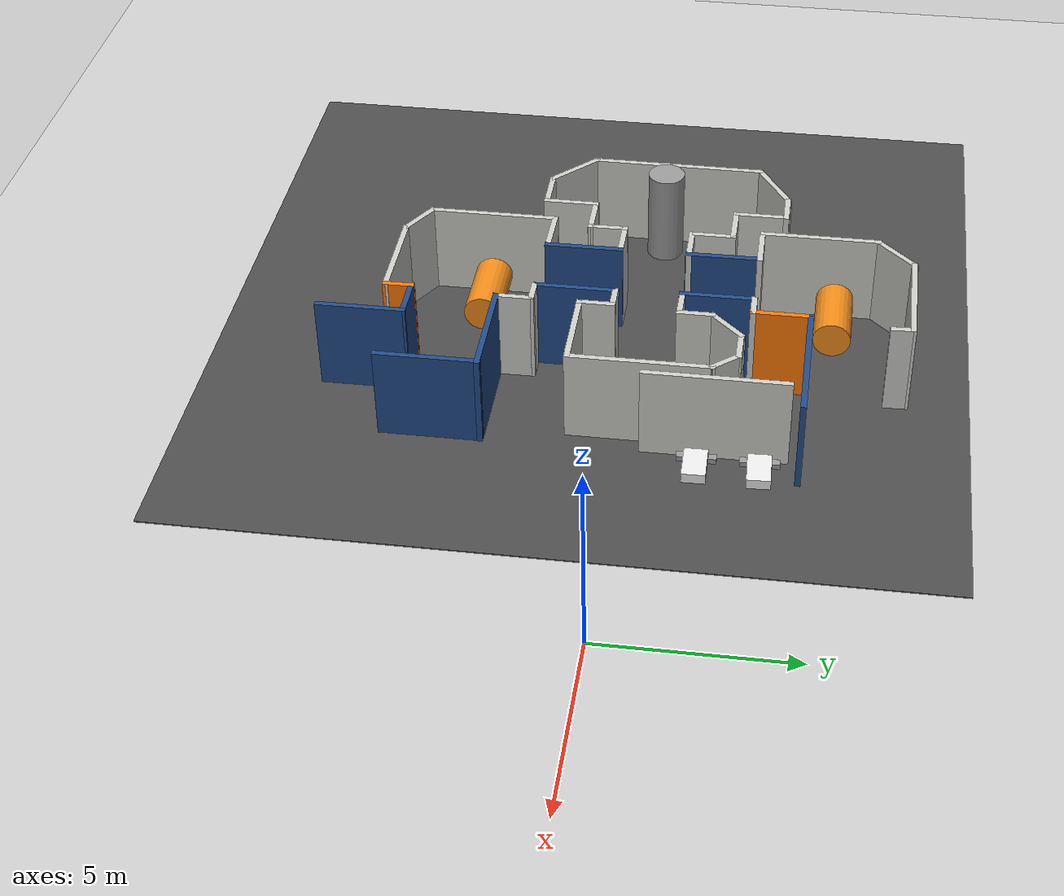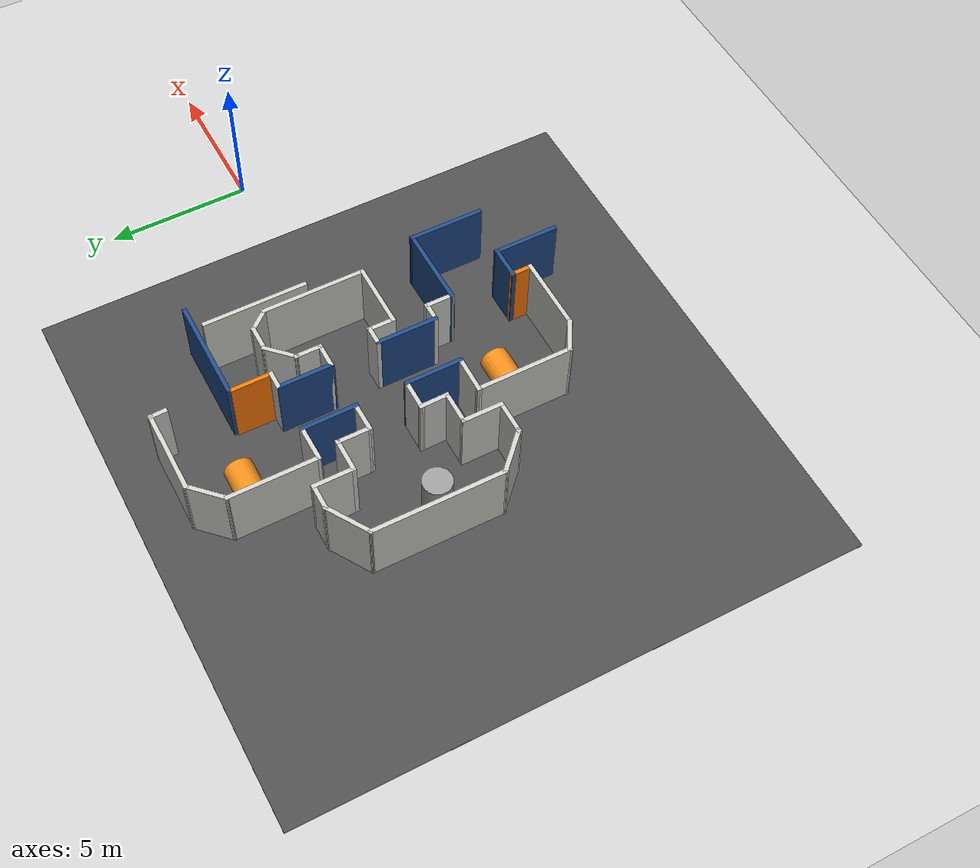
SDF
<sdf version="1.7">
 <world name="default">
  <model name="ground_plane">
   <static>1</static>
   <link name="link">
    <collision name="collision">
     <geometry><plane><normal>0 0 1</normal><size>100 100</size></plane></geometry>
     <surface><friction><ode><mu>100</mu><mu2>50</mu2></ode></friction></surface>
    </collision>
    <visual name="visual">
     <cast_shadows>0</cast_shadows>
     <geometry><plane><normal>0 0 1</normal><size>100 100</size></plane></geometry>
     <material>
      <script><uri>file://media/materials/scripts/gazebo.material</uri><name>Gazebo/Grey</name></script>
     </material>
    </visual>
   </link>
  </model>
  <model name="among_us_world">
   <pose>0.133216 -0.12311 0 0 -0 0</pose>
   <link name="Wall_101">
    <collision name="Wall_101_Collision">
     <geometry><box><size>3.75 0.15 2.5</size></box></geometry>
     <pose>0 0 1.25 0 -0 0</pose>
    </collision>
    <visual name="Wall_101_Visual">
     <pose>0 0 1.25 0 -0 0</pose>
     <geometry><box><size>3.75 0.15 2.5</size></box></geometry>
     <material>
      <script><uri>file://media/materials/scripts/gazebo.material</uri><name>Gazebo/CeilingTiled</name></script>
      <ambient>0.12549 0.290196 0.529412 1</ambient>
     </material>
     <meta><layer>0</layer></meta>
    </visual>
    <pose>-6.98451 2.43054 0 0 -0 -1.5708</pose>
   </link>
   <link name="Wall_161">
    <collision name="Wall_161_Collision">
     <geometry><box><size>2.70224 0.15 2.5</size></box></geometry>
     <pose>0 0 1.25 0 -0 0</pose>
    </collision>
    <visual name="Wall_161_Visual">
     <pose>0 0 1.25 0 -0 0</pose>
     <geometry><box><size>2.70224 0.15 2.5</size></box></geometry>
     <material>
      <script><uri>file://media/materials/scripts/gazebo.material</uri><name>Gazebo/Motorway</name></script>
      <ambient>0.12549 0.290196 0.529412 1</ambient>
     </material>
     <meta><layer>0</layer></meta>
    </visual>
    <pose>-6.87644 -4.72879 0 0 -0 1.5708</pose>
   </link>
   <link name="Wall_162">
    <collision name="Wall_162_Collision">
     <geometry><box><size>2.95229 0.15 2.5</size></box></geometry>
     <pose>0 0 1.25 0 -0 0</pose>
    </collision>
    <visual name="Wall_162_Visual">
     <pose>0 0 1.25 0 -0 0</pose>
     <geometry><box><size>2.95229 0.15 2.5</size></box></geometry>
     <material>
      <script><uri>file://media/materials/scripts/gazebo.material</uri><name>Gazebo/Motorway</name></script>
      <ambient>0.12549 0.290196 0.529412 1</ambient>
     </material>
     <meta><layer>0</layer></meta>
    </visual>
    <pose>-8.262 -3.46044 0 0 -0 -3.13604</pose>
   </link>
   <link name="Wall_163">
    <collision name="Wall_163_Collision">
     <geometry><box><size>1.04776 0.15 2.5</size></box></geometry>
     <pose>0 0 1.25 0 -0 0</pose>
    </collision>
    <visual name="Wall_163_Visual">
     <pose>0 0 1.25 0 -0 0</pose>
     <geometry><box><size>1.04776 0.15 2.5</size></box></geometry>
     <material>
      <script><uri>file://media/materials/scripts/gazebo.material</uri><name>Gazebo/CeilingTiled</name></script>
      <ambient>0.996078 0.47451 0.0196078 1</ambient>
     </material>
     <meta><layer>0</layer></meta>
    </visual>
    <pose>-9.66312 -3.00378 0 0 -0 1.5708</pose>
   </link>
   <link name="Wall_164">
    <collision name="Wall_164_Collision">
     <geometry><box><size>0.75 0.15 2.5</size></box></geometry>
     <pose>0 0 1.25 0 -0 0</pose>
    </collision>
    <visual name="Wall_164_Visual">
     <pose>0 0 1.25 0 -0 0</pose>
     <geometry><box><size>0.75 0.15 2.5</size></box></geometry>
     <material>
      <script><uri>file://media/materials/scripts/gazebo.material</uri><name>Gazebo/CeilingTiled</name></script>
      <ambient>0.996078 0.47451 0.0196078 1</ambient>
     </material>
     <meta><layer>0</layer></meta>
    </visual>
    <pose>-9.96312 -2.55491 0 0 -0 3.14159</pose>
   </link>
   <link name="Wall_165">
    <collision name="Wall_165_Collision">
     <geometry><box><size>2.25 0.15 2.5</size></box></geometry>
     <pose>0 0 1.25 0 -0 0</pose>
    </collision>
    <visual name="Wall_165_Visual">
     <pose>0 0 1.25 0 -0 0</pose>
     <geometry><box><size>2.25 0.15 2.5</size></box></geometry>
     <material>
      <script><uri>file://media/materials/scripts/gazebo.material</uri><name>Gazebo/Motorway</name></script>
      <ambient>0.12549 0.290196 0.529412 1</ambient>
     </material>
     <meta><layer>0</layer></meta>
    </visual>
    <pose>-10.2631 -1.50491 0 0 -0 1.5708</pose>
   </link>
   <link name="Wall_166">
    <collision name="Wall_166_Collision">
     <geometry><box><size>0.75 0.15 2.5</size></box></geometry>
     <pose>0 0 1.25 0 -0 0</pose>
    </collision>
    <visual name="Wall_166_Visual">
     <pose>0 0 1.25 0 -0 0</pose>
     <geometry><box><size>0.75 0.15 2.5</size></box></geometry>
     <material>
      <script><uri>file://media/materials/scripts/gazebo.material</uri><name>Gazebo/CeilingTiled</name></script>
      <ambient>0.435294 0.796078 0.67451 1</ambient>
     </material>
     <meta><layer>0</layer></meta>
    </visual>
    <pose>-9.96312 -0.454906 0 0 -0 0</pose>
   </link>
   <link name="Wall_167">
    <collision name="Wall_167_Collision">
     <geometry><box><size>1 0.15 2.5</size></box></geometry>
     <pose>0 0 1.25 0 -0 0</pose>
    </collision>
    <visual name="Wall_167_Visual">
     <pose>0 0 1.25 0 -0 0</pose>
     <geometry><box><size>1 0.15 2.5</size></box></geometry>
     <material>
      <script><uri>file://media/materials/scripts/gazebo.material</uri><name>Gazebo/CeilingTiled</name></script>
      <ambient>0.435294 0.796078 0.67451 1</ambient>
     </material>
     <meta><layer>0</layer></meta>
    </visual>
    <pose>-9.66312 -0.879906 0 0 -0 -1.5708</pose>
   </link>
   <link name="Wall_168">
    <collision name="Wall_168_Collision">
     <geometry><box><size>2.40666 0.15 2.5</size></box></geometry>
     <pose>0 0 1.25 0 -0 0</pose>
    </collision>
    <visual name="Wall_168_Visual">
     <pose>0 0 1.25 0 -0 0</pose>
     <geometry><box><size>2.40666 0.15 2.5</size></box></geometry>
     <material>
      <script><uri>file://media/materials/scripts/gazebo.material</uri><name>Gazebo/CeilingTiled</name></script>
      <ambient>0.435294 0.796078 0.67451 1</ambient>
     </material>
     <meta><layer>0</layer></meta>
    </visual>
    <pose>-8.53479 -1.30491 0 0 -0 0</pose>
   </link>
   <link name="Wall_169">
    <collision name="Wall_169_Collision">
     <geometry><box><size>3.75 0.15 2.5</size></box></geometry>
     <pose>0 0 1.25 0 -0 0</pose>
    </collision>
    <visual name="Wall_169_Visual">
     <pose>0 0 1.25 0 -0 0</pose>
     <geometry><box><size>3.75 0.15 2.5</size></box></geometry>
     <material>
      <script><uri>file://media/materials/scripts/gazebo.material</uri><name>Gazebo/CeilingTiled</name></script>
      <ambient>0.435294 0.796078 0.67451 1</ambient>
     </material>
     <meta><layer>0</layer></meta>
    </visual>
    <pose>-7.39091 0.495094 0 0 -0 1.5708</pose>
   </link>
   <link name="Wall_170">
    <collision name="Wall_170_Collision">
     <geometry><box><size>0.93677 0.15 2.5</size></box></geometry>
     <pose>0 0 1.25 0 -0 0</pose>
    </collision>
    <visual name="Wall_170_Visual">
     <pose>0 0 1.25 0 -0 0</pose>
     <geometry><box><size>0.93677 0.15 2.5</size></box></geometry>
     <material>
      <script><uri>file://media/materials/scripts/gazebo.material</uri><name>Gazebo/CeilingTiled</name></script>
      <ambient>0.435294 0.796078 0.67451 1</ambient>
     </material>
     <meta><layer>0</layer></meta>
    </visual>
    <pose>-7.66031 2.59561 0 0 -0 2.2722</pose>
   </link>
   <link name="Wall_171">
    <collision name="Wall_171_Collision">
     <geometry><box><size>1 0.15 2.5</size></box></geometry>
     <pose>0 0 1.25 0 -0 0</pose>
    </collision>
    <visual name="Wall_171_Visual">
     <pose>0 0 1.25 0 -0 0</pose>
     <geometry><box><size>1 0.15 2.5</size></box></geometry>
     <material>
      <script><uri>file://media/materials/scripts/gazebo.material</uri><name>Gazebo/CeilingTiled</name></script>
      <ambient>0.435294 0.796078 0.67451 1</ambient>
     </material>
     <meta><layer>0</layer></meta>
    </visual>
    <pose>-8.33916 2.89614 0 0 -0 3.14159</pose>
   </link>
   <link name="Wall_172">
    <collision name="Wall_172_Collision">
     <geometry><box><size>1.25 0.15 2.5</size></box></geometry>
     <pose>0 0 1.25 0 -0 0</pose>
    </collision>
    <visual name="Wall_172_Visual">
     <pose>0 0 1.25 0 -0 0</pose>
     <geometry><box><size>1.25 0.15 2.5</size></box></geometry>
     <material>
      <script><uri>file://media/materials/scripts/gazebo.material</uri><name>Gazebo/CeilingTiled</name></script>
      <ambient>0.435294 0.796078 0.67451 1</ambient>
     </material>
     <meta><layer>0</layer></meta>
    </visual>
    <pose>-9.15307 2.50723 0 0 -0 -2.35619</pose>
   </link>
   <link name="Wall_173">
    <collision name="Wall_173_Collision">
     <geometry><box><size>1 0.15 2.5</size></box></geometry>
     <pose>0 0 1.25 0 -0 0</pose>
    </collision>
    <visual name="Wall_173_Visual">
     <pose>0 0 1.25 0 -0 0</pose>
     <geometry><box><size>1 0.15 2.5</size></box></geometry>
     <material>
      <script><uri>file://media/materials/scripts/gazebo.material</uri><name>Gazebo/CeilingTiled</name></script>
      <ambient>0.435294 0.796078 0.67451 1</ambient>
     </material>
     <meta><layer>0</layer></meta>
    </visual>
    <pose>-9.54198 1.69332 0 0 -0 -1.5708</pose>
   </link>
   <link name="Wall_174">
    <collision name="Wall_174_Collision">
     <geometry><box><size>0.969112 0.15 2.5</size></box></geometry>
     <pose>0 0 1.25 0 -0 0</pose>
    </collision>
    <visual name="Wall_174_Visual">
     <pose>0 0 1.25 0 -0 0</pose>
     <geometry><box><size>0.969112 0.15 2.5</size></box></geometry>
     <material>
      <script><uri>file://media/materials/scripts/gazebo.material</uri><name>Gazebo/CeilingTiled</name></script>
      <ambient>0.435294 0.796078 0.67451 1</ambient>
     </material>
     <meta><layer>0</layer></meta>
    </visual>
    <pose>-9.95154 1.26832 0 0 -0 -3.14159</pose>
   </link>
   <link name="Wall_175">
    <collision name="Wall_175_Collision">
     <geometry><box><size>2 0.15 2.5</size></box></geometry>
     <pose>0 0 1.25 0 -0 0</pose>
    </collision>
    <visual name="Wall_175_Visual">
     <pose>0 0 1.25 0 -0 0</pose>
     <geometry><box><size>2 0.15 2.5</size></box></geometry>
     <material>
      <script><uri>file://media/materials/scripts/gazebo.material</uri><name>Gazebo/Motorway</name></script>
      <ambient>0.12549 0.290196 0.529412 1</ambient>
     </material>
     <meta><layer>0</layer></meta>
    </visual>
    <pose>-10.3611 2.17994 0 0 -0 1.5708</pose>
   </link>
   <link name="Wall_176">
    <collision name="Wall_176_Collision">
     <geometry><box><size>0.719112 0.15 2.5</size></box></geometry>
     <pose>0 0 1.25 0 -0 0</pose>
    </collision>
    <visual name="Wall_176_Visual">
     <pose>0 0 1.25 0 -0 0</pose>
     <geometry><box><size>0.719112 0.15 2.5</size></box></geometry>
     <material>
      <script><uri>file://media/materials/scripts/gazebo.material</uri><name>Gazebo/CeilingTiled</name></script>
      <ambient>0.996078 0.47451 0.0196078 1</ambient>
     </material>
     <meta><layer>0</layer></meta>
    </visual>
    <pose>-10.0765 3.11832 0 0 -0 0</pose>
   </link>
   <link name="Wall_177">
    <collision name="Wall_177_Collision">
     <geometry><box><size>1.5 0.15 2.5</size></box></geometry>
     <pose>0 0 1.25 0 -0 0</pose>
    </collision>
    <visual name="Wall_177_Visual">
     <pose>0 0 1.25 0 -0 0</pose>
     <geometry><box><size>1.5 0.15 2.5</size></box></geometry>
     <material>
      <script><uri>file://media/materials/scripts/gazebo.material</uri><name>Gazebo/Grey</name></script>
      <ambient>0.996078 0.47451 0.0196078 1</ambient>
     </material>
     <meta><layer>0</layer></meta>
    </visual>
    <pose>-9.79198 3.79332 0 0 -0 1.5708</pose>
   </link>
   <link name="Wall_208">
    <collision name="Wall_208_Collision">
     <geometry><box><size>1.25 0.15 2.5</size></box></geometry>
     <pose>0 0 1.25 0 -0 0</pose>
    </collision>
    <visual name="Wall_208_Visual">
     <pose>0 0 1.25 0 -0 0</pose>
     <geometry><box><size>1.25 0.15 2.5</size></box></geometry>
     <material>
      <script><uri>file://media/materials/scripts/gazebo.material</uri><name>Gazebo/CeilingTiled</name></script>
      <ambient>0.458824 0.313726 0.482353 1</ambient>
     </material>
     <meta><layer>0</layer></meta>
    </visual>
    <pose>-13.1077 1.80265 0 0 -0 -1.57068</pose>
   </link>
   <link name="Wall_209">
    <collision name="Wall_209_Collision">
     <geometry><box><size>1.11978 0.15 2.5</size></box></geometry>
     <pose>0 0 1.25 0 -0 0</pose>
    </collision>
    <visual name="Wall_209_Visual">
     <pose>0 0 1.25 0 -0 0</pose>
     <geometry><box><size>1.11978 0.15 2.5</size></box></geometry>
     <material>
      <script><uri>file://media/materials/scripts/gazebo.material</uri><name>Gazebo/CeilingTiled</name></script>
      <ambient>0.458824 0.313726 0.482353 1</ambient>
     </material>
     <meta><layer>0</layer></meta>
    </visual>
    <pose>-12.6228 1.25736 0 0 -0 0.009865</pose>
   </link>
   <link name="Wall_32">
    <collision name="Wall_32_Collision">
     <geometry><box><size>0.656345 0.15 2.5</size></box></geometry>
     <pose>0 0 1.25 0 -0 0</pose>
    </collision>
    <visual name="Wall_32_Visual">
     <pose>0 0 1.25 0 -0 0</pose>
     <geometry><box><size>0.656345 0.15 2.5</size></box></geometry>
     <material>
      <script><uri>file://media/materials/scripts/gazebo.material</uri><name>Gazebo/CeilingTiled</name></script>
      <ambient>0.996078 0.47451 0.0196078 1</ambient>
     </material>
     <meta><layer>0</layer></meta>
    </visual>
    <pose>-9.54527 6.90412 0 0 -0 1.60153</pose>
   </link>
   <link name="Wall_33">
    <collision name="Wall_33_Collision">
     <geometry><box><size>3 0.15 2.5</size></box></geometry>
     <pose>0 0 1.25 0 -0 0</pose>
    </collision>
    <visual name="Wall_33_Visual">
     <pose>0 0 1.25 0 -0 0</pose>
     <geometry><box><size>3 0.15 2.5</size></box></geometry>
     <material>
      <script><uri>file://media/materials/scripts/gazebo.material</uri><name>Gazebo/CeilingTiled</name></script>
      <ambient>0.996078 0.47451 0.0196078 1</ambient>
     </material>
     <meta><layer>0</layer></meta>
    </visual>
    <pose>-10.978 7.15717 0 0 -0 3.14159</pose>
   </link>
   <link name="Wall_34">
    <collision name="Wall_34_Collision">
     <geometry><box><size>1.5 0.15 2.5</size></box></geometry>
     <pose>0 0 1.25 0 -0 0</pose>
    </collision>
    <visual name="Wall_34_Visual">
     <pose>0 0 1.25 0 -0 0</pose>
     <geometry><box><size>1.5 0.15 2.5</size></box></geometry>
     <material>
      <script><uri>file://media/materials/scripts/gazebo.material</uri><name>Gazebo/CeilingTiled</name></script>
      <ambient>0.996078 0.47451 0.0196078 1</ambient>
     </material>
     <meta><layer>0</layer></meta>
    </visual>
    <pose>-12.8803 6.67987 0 0 -0 -2.35619</pose>
   </link>
   <link name="Wall_35">
    <collision name="Wall_35_Collision">
     <geometry><box><size>3.21889 0.15 2.5</size></box></geometry>
     <pose>0 0 1.25 0 -0 0</pose>
    </collision>
    <visual name="Wall_35_Visual">
     <pose>0 0 1.25 0 -0 0</pose>
     <geometry><box><size>3.21889 0.15 2.5</size></box></geometry>
     <material>
      <script><uri>file://media/materials/scripts/gazebo.material</uri><name>Gazebo/CeilingTiled</name></script>
      <ambient>0.996078 0.47451 0.0196078 1</ambient>
     </material>
     <meta><layer>0</layer></meta>
    </visual>
    <pose>-13.3576 4.66813 0 0 -0 -1.5708</pose>
   </link>
   <link name="Wall_36">
    <collision name="Wall_36_Collision">
     <geometry><box><size>1.35468 0.15 2.5</size></box></geometry>
     <pose>0 0 1.25 0 -0 0</pose>
    </collision>
    <visual name="Wall_36_Visual">
     <pose>0 0 1.25 0 -0 0</pose>
     <geometry><box><size>1.35468 0.15 2.5</size></box></geometry>
     <material>
      <script><uri>file://media/materials/scripts/gazebo.material</uri><name>Gazebo/CeilingTiled</name></script>
      <ambient>0.996078 0.47451 0.0196078 1</ambient>
     </material>
     <meta><layer>0</layer></meta>
    </visual>
    <pose>-12.7556 3.12401 0 0 -0 0.009756</pose>
   </link>
   <link name="Wall_37">
    <collision name="Wall_37_Collision">
     <geometry><box><size>2.0178 0.15 2.5</size></box></geometry>
     <pose>0 0 1.25 0 -0 0</pose>
    </collision>
    <visual name="Wall_37_Visual">
     <pose>0 0 1.25 0 -0 0</pose>
     <geometry><box><size>2.0178 0.15 2.5</size></box></geometry>
     <material>
      <script><uri>file://media/materials/scripts/gazebo.material</uri><name>Gazebo/Motorway</name></script>
      <ambient>0.12549 0.290196 0.529412 1</ambient>
     </material>
     <meta><layer>0</layer></meta>
    </visual>
    <pose>-12.1457 2.18046 0 0 -0 -1.56247</pose>
   </link>
   <link name="Wall_40">
    <collision name="Wall_40_Collision">
     <geometry><box><size>1.25 0.15 2.5</size></box></geometry>
     <pose>0 0 1.25 0 -0 0</pose>
    </collision>
    <visual name="Wall_40_Visual">
     <pose>0 0 1.25 0 -0 0</pose>
     <geometry><box><size>1.25 0.15 2.5</size></box></geometry>
     <material>
      <script><uri>file://media/materials/scripts/gazebo.material</uri><name>Gazebo/CeilingTiled</name></script>
      <ambient>0.458824 0.313726 0.482353 1</ambient>
     </material>
     <meta><layer>0</layer></meta>
    </visual>
    <pose>-13.6578 2.35272 0 0 -0 3.14159</pose>
   </link>
   <link name="Wall_43">
    <collision name="Wall_43_Collision">
     <geometry><box><size>1.5 0.15 2.5</size></box></geometry>
     <pose>0 0 1.25 0 -0 0</pose>
    </collision>
    <visual name="Wall_43_Visual">
     <pose>0 0 1.25 0 -0 0</pose>
     <geometry><box><size>1.5 0.15 2.5</size></box></geometry>
     <material>
      <script><uri>file://media/materials/scripts/gazebo.material</uri><name>Gazebo/CeilingTiled</name></script>
      <ambient>0.458824 0.313726 0.482353 1</ambient>
     </material>
     <meta><layer>0</layer></meta>
    </visual>
    <pose>-14.2078 3.02772 0 0 -0 1.5708</pose>
   </link>
   <link name="Wall_44">
    <collision name="Wall_44_Collision">
     <geometry><box><size>1 0.15 2.5</size></box></geometry>
     <pose>0 0 1.25 0 -0 0</pose>
    </collision>
    <visual name="Wall_44_Visual">
     <pose>0 0 1.25 0 -0 0</pose>
     <geometry><box><size>1 0.15 2.5</size></box></geometry>
     <material>
      <script><uri>file://media/materials/scripts/gazebo.material</uri><name>Gazebo/CeilingTiled</name></script>
      <ambient>0.458824 0.313726 0.482353 1</ambient>
     </material>
     <meta><layer>0</layer></meta>
    </visual>
    <pose>-14.6328 3.70272 0 0 -0 3.14159</pose>
   </link>
   <link name="Wall_45">
    <collision name="Wall_45_Collision">
     <geometry><box><size>1.76072 0.15 2.5</size></box></geometry>
     <pose>0 0 1.25 0 -0 0</pose>
    </collision>
    <visual name="Wall_45_Visual">
     <pose>0 0 1.25 0 -0 0</pose>
     <geometry><box><size>1.76072 0.15 2.5</size></box></geometry>
     <material>
      <script><uri>file://media/materials/scripts/gazebo.material</uri><name>Gazebo/CeilingTiled</name></script>
      <ambient>0.360784 0.207843 0.4 1</ambient>
     </material>
     <meta><layer>0</layer></meta>
    </visual>
    <pose>-15.7428 3.27922 0 0 -0 -2.58786</pose>
   </link>
   <link name="Wall_46">
    <collision name="Wall_46_Collision">
     <geometry><box><size>4.75003 0.15 2.5</size></box></geometry>
     <pose>0 0 1.25 0 -0 0</pose>
    </collision>
    <visual name="Wall_46_Visual">
     <pose>0 0 1.25 0 -0 0</pose>
     <geometry><box><size>4.75003 0.15 2.5</size></box></geometry>
     <material>
      <script><uri>file://media/materials/scripts/gazebo.material</uri><name>Gazebo/CeilingTiled</name></script>
      <ambient>0.360784 0.207843 0.4 1</ambient>
     </material>
     <meta><layer>0</layer></meta>
    </visual>
    <pose>-16.4358 0.555717 0 0 -0 -1.57428</pose>
   </link>
   <link name="Wall_47">
    <collision name="Wall_47_Collision">
     <geometry><box><size>1.7065 0.15 2.5</size></box></geometry>
     <pose>0 0 1.25 0 -0 0</pose>
    </collision>
    <visual name="Wall_47_Visual">
     <pose>0 0 1.25 0 -0 0</pose>
     <geometry><box><size>1.7065 0.15 2.5</size></box></geometry>
     <material>
      <script><uri>file://media/materials/scripts/gazebo.material</uri><name>Gazebo/CeilingTiled</name></script>
      <ambient>0.360784 0.207843 0.4 1</ambient>
     </material>
     <meta><layer>0</layer></meta>
    </visual>
    <pose>-15.8858 -2.28678 0 0 -0 -0.771315</pose>
   </link>
   <link name="Wall_48">
    <collision name="Wall_48_Collision">
     <geometry><box><size>1.266 0.15 2.5</size></box></geometry>
     <pose>0 0 1.25 0 -0 0</pose>
    </collision>
    <visual name="Wall_48_Visual">
     <pose>0 0 1.25 0 -0 0</pose>
     <geometry><box><size>1.266 0.15 2.5</size></box></geometry>
     <material>
      <script><uri>file://media/materials/scripts/gazebo.material</uri><name>Gazebo/CeilingTiled</name></script>
      <ambient>0.678431 0.498039 0.658824 1</ambient>
     </material>
     <meta><layer>0</layer></meta>
    </visual>
    <pose>-14.7698 -2.82928 0 0 -0 0</pose>
   </link>
   <link name="Wall_49">
    <collision name="Wall_49_Collision">
     <geometry><box><size>1.5 0.15 2.5</size></box></geometry>
     <pose>0 0 1.25 0 -0 0</pose>
    </collision>
    <visual name="Wall_49_Visual">
     <pose>0 0 1.25 0 -0 0</pose>
     <geometry><box><size>1.5 0.15 2.5</size></box></geometry>
     <material>
      <script><uri>file://media/materials/scripts/gazebo.material</uri><name>Gazebo/CeilingTiled</name></script>
      <ambient>0.458824 0.313726 0.482353 1</ambient>
     </material>
     <meta><layer>0</layer></meta>
    </visual>
    <pose>-14.2118 -2.15428 0 0 -0 1.5708</pose>
   </link>
   <link name="Wall_50">
    <collision name="Wall_50_Collision">
     <geometry><box><size>1.25 0.15 2.5</size></box></geometry>
     <pose>0 0 1.25 0 -0 0</pose>
    </collision>
    <visual name="Wall_50_Visual">
     <pose>0 0 1.25 0 -0 0</pose>
     <geometry><box><size>1.25 0.15 2.5</size></box></geometry>
     <material>
      <script><uri>file://media/materials/scripts/gazebo.material</uri><name>Gazebo/CeilingTiled</name></script>
      <ambient>0.458824 0.313726 0.482353 1</ambient>
     </material>
     <meta><layer>0</layer></meta>
    </visual>
    <pose>-13.6618 -1.47928 0 0 -0 0</pose>
   </link>
   <link name="Wall_51">
    <collision name="Wall_51_Collision">
     <geometry><box><size>1.07621 0.15 2.5</size></box></geometry>
     <pose>0 0 1.25 0 -0 0</pose>
    </collision>
    <visual name="Wall_51_Visual">
     <pose>0 0 1.25 0 -0 0</pose>
     <geometry><box><size>1.07621 0.15 2.5</size></box></geometry>
     <material>
      <script><uri>file://media/materials/scripts/gazebo.material</uri><name>Gazebo/CeilingTiled</name></script>
      <ambient>0.458824 0.313726 0.482353 1</ambient>
     </material>
     <meta><layer>0</layer></meta>
    </visual>
    <pose>-13.1188 -1.01578 0 0 -0 1.5859</pose>
   </link>
   <link name="Wall_52">
    <collision name="Wall_52_Collision">
     <geometry><box><size>1.1411 0.15 2.5</size></box></geometry>
     <pose>0 0 1.25 0 -0 0</pose>
    </collision>
    <visual name="Wall_52_Visual">
     <pose>0 0 1.25 0 -0 0</pose>
     <geometry><box><size>1.1411 0.15 2.5</size></box></geometry>
     <material>
      <script><uri>file://media/materials/scripts/gazebo.material</uri><name>Gazebo/CeilingTiled</name></script>
      <ambient>0.458824 0.313726 0.482353 1</ambient>
     </material>
     <meta><layer>0</layer></meta>
    </visual>
    <pose>-12.6302 -0.553561 0 0 -0 -0.00258</pose>
   </link>
   <link name="Wall_53">
    <collision name="Wall_53_Collision">
     <geometry><box><size>2.08956 0.15 2.5</size></box></geometry>
     <pose>0 0 1.25 0 -0 0</pose>
    </collision>
    <visual name="Wall_53_Visual">
     <pose>0 0 1.25 0 -0 0</pose>
     <geometry><box><size>2.08956 0.15 2.5</size></box></geometry>
     <material>
      <script><uri>file://media/materials/scripts/gazebo.material</uri><name>Gazebo/Motorway</name></script>
      <ambient>0.12549 0.290196 0.529412 1</ambient>
     </material>
     <meta><layer>0</layer></meta>
    </visual>
    <pose>-12.1122 -1.5246 0 0 -0 -1.56365</pose>
   </link>
   <link name="Wall_54">
    <collision name="Wall_54_Collision">
     <geometry><box><size>1.3912 0.15 2.5</size></box></geometry>
     <pose>0 0 1.25 0 -0 0</pose>
    </collision>
    <visual name="Wall_54_Visual">
     <pose>0 0 1.25 0 -0 0</pose>
     <geometry><box><size>1.3912 0.15 2.5</size></box></geometry>
     <material>
      <script><uri>file://media/materials/scripts/gazebo.material</uri><name>Gazebo/CeilingTiled</name></script>
      <ambient>0.996078 0.47451 0.0196078 1</ambient>
     </material>
     <meta><layer>0</layer></meta>
    </visual>
    <pose>-12.7414 -2.48657 0 0 -0 3.12906</pose>
   </link>
   <link name="Wall_55">
    <collision name="Wall_55_Collision">
     <geometry><box><size>3.5 0.15 2.5</size></box></geometry>
     <pose>0 0 1.25 0 -0 0</pose>
    </collision>
    <visual name="Wall_55_Visual">
     <pose>0 0 1.25 0 -0 0</pose>
     <geometry><box><size>3.5 0.15 2.5</size></box></geometry>
     <material>
      <script><uri>file://media/materials/scripts/gazebo.material</uri><name>Gazebo/CeilingTiled</name></script>
      <ambient>0.996078 0.47451 0.0196078 1</ambient>
     </material>
     <meta><layer>0</layer></meta>
    </visual>
    <pose>-13.3619 -4.15379 0 0 -0 -1.5708</pose>
   </link>
   <link name="Wall_56">
    <collision name="Wall_56_Collision">
     <geometry><box><size>1.25 0.15 2.5</size></box></geometry>
     <pose>0 0 1.25 0 -0 0</pose>
    </collision>
    <visual name="Wall_56_Visual">
     <pose>0 0 1.25 0 -0 0</pose>
     <geometry><box><size>1.25 0.15 2.5</size></box></geometry>
     <material>
      <script><uri>file://media/materials/scripts/gazebo.material</uri><name>Gazebo/CeilingTiled</name></script>
      <ambient>0.996078 0.47451 0.0196078 1</ambient>
     </material>
     <meta><layer>0</layer></meta>
    </visual>
    <pose>-12.8856 -6.10379 0 0 -0 -0.523599</pose>
   </link>
   <link name="Wall_57">
    <collision name="Wall_57_Collision">
     <geometry><box><size>2.75 0.15 2.5</size></box></geometry>
     <pose>0 0 1.25 0 -0 0</pose>
    </collision>
    <visual name="Wall_57_Visual">
     <pose>0 0 1.25 0 -0 0</pose>
     <geometry><box><size>2.75 0.15 2.5</size></box></geometry>
     <material>
      <script><uri>file://media/materials/scripts/gazebo.material</uri><name>Gazebo/CeilingTiled</name></script>
      <ambient>0.996078 0.47451 0.0196078 1</ambient>
     </material>
     <meta><layer>0</layer></meta>
    </visual>
    <pose>-11.1093 -6.37879 0 0 -0 0</pose>
   </link>
   <link name="Wall_58">
    <collision name="Wall_58_Collision">
     <geometry><box><size>0.828826 0.15 2.5</size></box></geometry>
     <pose>0 0 1.25 0 -0 0</pose>
    </collision>
    <visual name="Wall_58_Visual">
     <pose>0 0 1.25 0 -0 0</pose>
     <geometry><box><size>0.828826 0.15 2.5</size></box></geometry>
     <material>
      <script><uri>file://media/materials/scripts/gazebo.material</uri><name>Gazebo/Grey</name></script>
      <ambient>0.996078 0.47451 0.0196078 1</ambient>
     </material>
     <meta><layer>0</layer></meta>
    </visual>
    <pose>-9.81221 -6.03984 0 0 -0 1.57942</pose>
   </link>
   <link name="Wall_59">
    <collision name="Wall_59_Collision">
     <geometry><box><size>1.25 0.15 2.5</size></box></geometry>
     <pose>0 0 1.25 0 -0 0</pose>
    </collision>
    <visual name="Wall_59_Visual">
     <pose>0 0 1.25 0 -0 0</pose>
     <geometry><box><size>1.25 0.15 2.5</size></box></geometry>
     <material>
      <script><uri>file://media/materials/scripts/gazebo.material</uri><name>Gazebo/Motorway</name></script>
      <ambient>0.12549 0.290196 0.529412 1</ambient>
     </material>
     <meta><layer>0</layer></meta>
    </visual>
    <pose>-9.27098 -5.70088 0 0 -0 0</pose>
   </link>
   <link name="Wall_60">
    <collision name="Wall_60_Collision">
     <geometry><box><size>2.3556 0.15 2.5</size></box></geometry>
     <pose>0 0 1.25 0 -0 0</pose>
    </collision>
    <visual name="Wall_60_Visual">
     <pose>0 0 1.25 0 -0 0</pose>
     <geometry><box><size>2.3556 0.15 2.5</size></box></geometry>
     <material>
      <script><uri>file://media/materials/scripts/gazebo.material</uri><name>Gazebo/Motorway</name></script>
      <ambient>0.12549 0.290196 0.529412 1</ambient>
     </material>
     <meta><layer>0</layer></meta>
    </visual>
    <pose>-8.71756 -6.80367 0 0 -0 -1.56769</pose>
   </link>
   <link name="Wall_96">
    <collision name="Wall_96_Collision">
     <geometry><box><size>3.70441 0.15 2.5</size></box></geometry>
     <pose>0 0 1.25 0 -0 0</pose>
    </collision>
    <visual name="Wall_96_Visual">
     <pose>0 0 1.25 0 -0 0</pose>
     <geometry><box><size>3.70441 0.15 2.5</size></box></geometry>
     <material>
      <script><uri>file://media/materials/scripts/gazebo.material</uri><name>Gazebo/Motorway</name></script>
      <ambient>0.12549 0.290196 0.529412 1</ambient>
     </material>
     <meta><layer>0</layer></meta>
    </visual>
    <pose>-7.9573 4.58054 0 0 -0 0</pose>
   </link>
   <static>1</static>
  </model>
  <model name="orange_cylinder_clone">
   <link name="link_0">
    <inertial>
     <mass>1</mass>
     <inertia><ixx>0.145833</ixx><ixy>0</ixy><ixz>0</ixz><iyy>0.145833</iyy><iyz>0</iyz><izz>0.125</izz></inertia>
    </inertial>
    <visual name="visual">
     <geometry><cylinder><radius>0.5</radius><length>1.88443</length></cylinder></geometry>
     <material>
      <lighting>1</lighting>
      <script><uri>file://media/materials/scripts/gazebo.material</uri><name>Gazebo/Orange</name></script>
      <shader type="pixel"><normal_map>__default__</normal_map></shader>
      <ambient>1 0.509 0.047 1</ambient>
      <diffuse>1 0.509 0.047 1</diffuse>
      <specular>0.5 0.5 0.5 1</specular>
      <emissive>0 0 0 1</emissive>
     </material>
    </visual>
    <collision name="collision">
     <geometry><cylinder><radius>0.5</radius><length>1.88443</length></cylinder></geometry>
     <surface>
      <friction>
       <ode><mu>1</mu><mu2>1</mu2><fdir1>0 0 0</fdir1><slip1>0</slip1><slip2>0</slip2></ode>
       <torsional>
        <coefficient>1</coefficient>
        <patch_radius>0</patch_radius>
        <surface_radius>0</surface_radius>
        <use_patch_radius>1</use_patch_radius>
        <ode><slip>0</slip></ode>
       </torsional>
      </friction>
      <bounce><restitution_coefficient>0</restitution_coefficient><threshold>1e+06</threshold></bounce>
      <contact>
       <collide_without_contact>0</collide_without_contact>
       <collide_without_contact_bitmask>1</collide_without_contact_bitmask>
       <collide_bitmask>1</collide_bitmask>
       <ode>
        <soft_cfm>0</soft_cfm>
        <soft_erp>0.2</soft_erp>
        <kp>1e+13</kp>
        <kd>1</kd>
        <max_vel>0.01</max_vel>
        <min_depth>0</min_depth>
       </ode>
       <bullet>
        <split_impulse>1</split_impulse>
        <split_impulse_penetration_threshold>-0.01</split_impulse_penetration_threshold>
        <soft_cfm>0</soft_cfm>
        <soft_erp>0.2</soft_erp>
        <kp>1e+13</kp>
        <kd>1</kd>
       </bullet>
      </contact>
     </surface>
    </collision>
   </link>
   <static>0</static>
   <pose>-12.1912 5.04645 0.590071 -1.5708 1.55143 -1.57632</pose>
  </model>
  <model name="orange_cylinder_clone_clone">
   <link name="link_0">
    <inertial>
     <mass>1</mass>
     <inertia><ixx>0.145833</ixx><ixy>0</ixy><ixz>0</ixz><iyy>0.145833</iyy><iyz>0</iyz><izz>0.125</izz></inertia>
    </inertial>
    <visual name="visual">
     <geometry><cylinder><radius>0.5</radius><length>1.88443</length></cylinder></geometry>
     <material>
      <lighting>1</lighting>
      <script><uri>file://media/materials/scripts/gazebo.material</uri><name>Gazebo/Orange</name></script>
      <shader type="pixel"><normal_map>__default__</normal_map></shader>
      <ambient>1 0.509 0.047 1</ambient>
      <diffuse>1 0.509 0.047 1</diffuse>
      <specular>0.5 0.5 0.5 1</specular>
      <emissive>0 0 0 1</emissive>
     </material>
    </visual>
    <collision name="collision">
     <geometry><cylinder><radius>0.5</radius><length>1.88443</length></cylinder></geometry>
     <surface>
      <friction>
       <ode><mu>1</mu><mu2>1</mu2><fdir1>0 0 0</fdir1><slip1>0</slip1><slip2>0</slip2></ode>
       <torsional>
        <coefficient>1</coefficient>
        <patch_radius>0</patch_radius>
        <surface_radius>0</surface_radius>
        <use_patch_radius>1</use_patch_radius>
        <ode><slip>0</slip></ode>
       </torsional>
      </friction>
      <bounce><restitution_coefficient>0</restitution_coefficient><threshold>1e+06</threshold></bounce>
      <contact>
       <collide_without_contact>0</collide_without_contact>
       <collide_without_contact_bitmask>1</collide_without_contact_bitmask>
       <collide_bitmask>1</collide_bitmask>
       <ode>
        <soft_cfm>0</soft_cfm>
        <soft_erp>0.2</soft_erp>
        <kp>1e+13</kp>
        <kd>1</kd>
        <max_vel>0.01</max_vel>
        <min_depth>0</min_depth>
       </ode>
       <bullet>
        <split_impulse>1</split_impulse>
        <split_impulse_penetration_threshold>-0.01</split_impulse_penetration_threshold>
        <soft_cfm>0</soft_cfm>
        <soft_erp>0.2</soft_erp>
        <kp>1e+13</kp>
        <kd>1</kd>
       </bullet>
      </contact>
     </surface>
    </collision>
   </link>
   <static>0</static>
   <pose>-12.1704 -4.30471 0.589029 -2.05384 1.53534 -2.05993</pose>
  </model>
  <model name="asphalt_plane">
   <static>1</static>
   <link name="link">
    <collision name="collision"><geometry><box><size>20 20 0.1</size></box></geometry></collision>
    <visual name="visual">
     <cast_shadows>0</cast_shadows>
     <geometry><box><size>20 20 0.1</size></box></geometry>
     <material>
      <script>
       <uri>model://asphalt_plane/materials/scripts</uri>
       <uri>model://asphalt_plane/materials/textures</uri>
       <name>vrc/asphalt</name>
      </script>
     </material>
    </visual>
   </link>
   <pose>-12.6134 -1.31009 -0.045514 0 -0 0</pose>
  </model>
  <model name="bed">
   <link name="link_1">
    <inertial>
     <mass>0.166557</mass>
     <inertia>
      <ixx>0.00618823</ixx>
      <ixy>0</ixy>
      <ixz>0</ixz>
      <iyy>0.0149173</iyy>
      <iyz>0</iyz>
      <izz>0.0190304</izz>
     </inertia>
    </inertial>
    <pose>0.268517 -0.007523 0.053425 0 -0 0</pose>
    <visual name="visual">
     <geometry><box><size>1 0.609172 0.273416</size></box></geometry>
     <material>
      <lighting>1</lighting>
      <script><uri>file://media/materials/scripts/gazebo.material</uri><name>Gazebo/White</name></script>
      <shader type="pixel"><normal_map>__default__</normal_map></shader>
      <ambient>1 1 1 1</ambient>
      <diffuse>1 1 1 1</diffuse>
      <specular>0 0 0 1</specular>
      <emissive>0 0 0 1</emissive>
     </material>
    </visual>
    <collision name="collision">
     <geometry><box><size>1 0.609172 0.273416</size></box></geometry>
     <surface>
      <friction>
       <ode><mu>1</mu><mu2>1</mu2><fdir1>0 0 0</fdir1><slip1>0</slip1><slip2>0</slip2></ode>
       <torsional>
        <coefficient>1</coefficient>
        <patch_radius>0</patch_radius>
        <surface_radius>0</surface_radius>
        <use_patch_radius>1</use_patch_radius>
        <ode><slip>0</slip></ode>
       </torsional>
      </friction>
      <bounce><restitution_coefficient>0</restitution_coefficient><threshold>1e+06</threshold></bounce>
      <contact>
       <collide_without_contact>0</collide_without_contact>
       <collide_without_contact_bitmask>1</collide_without_contact_bitmask>
       <collide_bitmask>1</collide_bitmask>
       <ode>
        <soft_cfm>0</soft_cfm>
        <soft_erp>0.2</soft_erp>
        <kp>1e+13</kp>
        <kd>1</kd>
        <max_vel>0.01</max_vel>
        <min_depth>0</min_depth>
       </ode>
       <bullet>
        <split_impulse>1</split_impulse>
        <split_impulse_penetration_threshold>-0.01</split_impulse_penetration_threshold>
        <soft_cfm>0</soft_cfm>
        <soft_erp>0.2</soft_erp>
        <kp>1e+13</kp>
        <kd>1</kd>
       </bullet>
      </contact>
     </surface>
    </collision>
   </link>
   <link name="link_2">
    <inertial>
     <mass>0.00661892</mass>
     <inertia>
      <ixx>3.651e-05</ixx>
      <ixy>0</ixy>
      <ixz>0</ixz>
      <iyy>3.722e-05</iyy>
      <iyz>0</iyz>
      <izz>4.631e-05</izz>
     </inertia>
    </inertial>
    <pose>-0.144333 -0.400103 -0.02691 0 -0 0</pose>
    <visual name="visual">
     <geometry><box><size>0.206441 0.203314 0.157681</size></box></geometry>
     <material>
      <lighting>1</lighting>
      <script><uri>file://media/materials/scripts/gazebo.material</uri><name>Gazebo/Grey</name></script>
      <shader type="pixel"><normal_map>__default__</normal_map></shader>
      <ambient>0 0 0 1</ambient>
      <diffuse>0 0 0 1</diffuse>
      <specular>0 0 0 1</specular>
      <emissive>0 0 0 1</emissive>
     </material>
    </visual>
    <collision name="collision">
     <geometry><box><size>0.206441 0.203314 0.157681</size></box></geometry>
     <surface>
      <friction>
       <ode><mu>1</mu><mu2>1</mu2><fdir1>0 0 0</fdir1><slip1>0</slip1><slip2>0</slip2></ode>
       <torsional>
        <coefficient>1</coefficient>
        <patch_radius>0</patch_radius>
        <surface_radius>0</surface_radius>
        <use_patch_radius>1</use_patch_radius>
        <ode><slip>0</slip></ode>
       </torsional>
      </friction>
      <bounce><restitution_coefficient>0</restitution_coefficient><threshold>1e+06</threshold></bounce>
      <contact>
       <collide_without_contact>0</collide_without_contact>
       <collide_without_contact_bitmask>1</collide_without_contact_bitmask>
       <collide_bitmask>1</collide_bitmask>
       <ode>
        <soft_cfm>0</soft_cfm>
        <soft_erp>0.2</soft_erp>
        <kp>1e+13</kp>
        <kd>1</kd>
        <max_vel>0.01</max_vel>
        <min_depth>0</min_depth>
       </ode>
       <bullet>
        <split_impulse>1</split_impulse>
        <split_impulse_penetration_threshold>-0.01</split_impulse_penetration_threshold>
        <soft_cfm>0</soft_cfm>
        <soft_erp>0.2</soft_erp>
        <kp>1e+13</kp>
        <kd>1</kd>
       </bullet>
      </contact>
     </surface>
    </collision>
   </link>
   <link name="link_2_clone">
    <inertial>
     <mass>0.00661892</mass>
     <inertia>
      <ixx>3.651e-05</ixx>
      <ixy>0</ixy>
      <ixz>0</ixz>
      <iyy>3.722e-05</iyy>
      <iyz>0</iyz>
      <izz>4.631e-05</izz>
     </inertia>
    </inertial>
    <pose>-0.124183 0.407627 -0.026515 0 -0 0</pose>
    <visual name="visual">
     <geometry><box><size>0.206441 0.203314 0.157681</size></box></geometry>
     <material>
      <lighting>1</lighting>
      <script><uri>file://media/materials/scripts/gazebo.material</uri><name>Gazebo/Grey</name></script>
      <shader type="pixel"><normal_map>__default__</normal_map></shader>
      <ambient>0 0 0 1</ambient>
      <diffuse>0 0 0 1</diffuse>
      <specular>0 0 0 1</specular>
      <emissive>0 0 0 1</emissive>
     </material>
    </visual>
    <collision name="collision">
     <geometry><box><size>0.206441 0.203314 0.157681</size></box></geometry>
     <surface>
      <friction>
       <ode><mu>1</mu><mu2>1</mu2><fdir1>0 0 0</fdir1><slip1>0</slip1><slip2>0</slip2></ode>
       <torsional>
        <coefficient>1</coefficient>
        <patch_radius>0</patch_radius>
        <surface_radius>0</surface_radius>
        <use_patch_radius>1</use_patch_radius>
        <ode><slip>0</slip></ode>
       </torsional>
      </friction>
      <bounce><restitution_coefficient>0</restitution_coefficient><threshold>1e+06</threshold></bounce>
      <contact>
       <collide_without_contact>0</collide_without_contact>
       <collide_without_contact_bitmask>1</collide_without_contact_bitmask>
       <collide_bitmask>1</collide_bitmask>
       <ode>
        <soft_cfm>0</soft_cfm>
        <soft_erp>0.2</soft_erp>
        <kp>1e+13</kp>
        <kd>1</kd>
        <max_vel>0.01</max_vel>
        <min_depth>0</min_depth>
       </ode>
       <bullet>
        <split_impulse>1</split_impulse>
        <split_impulse_penetration_threshold>-0.01</split_impulse_penetration_threshold>
        <soft_cfm>0</soft_cfm>
        <soft_erp>0.2</soft_erp>
        <kp>1e+13</kp>
        <kd>1</kd>
       </bullet>
      </contact>
     </surface>
    </collision>
   </link>
   <joint name="link_2_JOINT_0" type="revolute">
    <parent>link_2</parent>
    <child>link_1</child>
    <axis>
     <xyz>1 0 0</xyz>
     <limit>
      <lower>-1.79769e+308</lower>
      <upper>1.79769e+308</upper>
      <effort>-1</effort>
      <velocity>-1</velocity>
     </limit>
     <dynamics>
      <spring_reference>0</spring_reference>
      <spring_stiffness>0</spring_stiffness>
      <damping>0</damping>
     </dynamics>
    </axis>
    <physics>
     <ode><limit><cfm>0</cfm><erp>0.2</erp></limit><suspension><cfm>0</cfm><erp>0.2</erp></suspension></ode>
    </physics>
   </joint>
   <joint name="link_2_clone_JOINT_1" type="revolute">
    <parent>link_2_clone</parent>
    <child>link_1</child>
    <axis>
     <xyz>1 0 0</xyz>
     <limit>
      <lower>-1.79769e+308</lower>
      <upper>1.79769e+308</upper>
      <effort>-1</effort>
      <velocity>-1</velocity>
     </limit>
     <dynamics>
      <spring_reference>0</spring_reference>
      <spring_stiffness>0</spring_stiffness>
      <damping>0</damping>
     </dynamics>
    </axis>
    <physics>
     <ode><limit><cfm>0</cfm><erp>0.2</erp></limit><suspension><cfm>0</cfm><erp>0.2</erp></suspension></ode>
    </physics>
   </joint>
   <static>1</static>
   <pose>-6.50619 3.49112 0.093278 1.6e-05 -0 0.037709</pose>
  </model>
  <model name="bed_clone">
   <link name="link_1">
    <inertial>
     <mass>0.166557</mass>
     <inertia>
      <ixx>0.00618823</ixx>
      <ixy>0</ixy>
      <ixz>0</ixz>
      <iyy>0.0149173</iyy>
      <iyz>0</iyz>
      <izz>0.0190304</izz>
     </inertia>
    </inertial>
    <pose>0.268517 -0.007523 0.053425 0 -0 0</pose>
    <visual name="visual">
     <geometry><box><size>1 0.609172 0.273416</size></box></geometry>
     <material>
      <lighting>1</lighting>
      <script><uri>file://media/materials/scripts/gazebo.material</uri><name>Gazebo/White</name></script>
      <shader type="pixel"><normal_map>__default__</normal_map></shader>
      <ambient>1 1 1 1</ambient>
      <diffuse>1 1 1 1</diffuse>
      <specular>0 0 0 1</specular>
      <emissive>0 0 0 1</emissive>
     </material>
    </visual>
    <collision name="collision">
     <geometry><box><size>1 0.609172 0.273416</size></box></geometry>
     <surface>
      <friction>
       <ode><mu>1</mu><mu2>1</mu2><fdir1>0 0 0</fdir1><slip1>0</slip1><slip2>0</slip2></ode>
       <torsional>
        <coefficient>1</coefficient>
        <patch_radius>0</patch_radius>
        <surface_radius>0</surface_radius>
        <use_patch_radius>1</use_patch_radius>
        <ode><slip>0</slip></ode>
       </torsional>
      </friction>
      <bounce><restitution_coefficient>0</restitution_coefficient><threshold>1e+06</threshold></bounce>
      <contact>
       <collide_without_contact>0</collide_without_contact>
       <collide_without_contact_bitmask>1</collide_without_contact_bitmask>
       <collide_bitmask>1</collide_bitmask>
       <ode>
        <soft_cfm>0</soft_cfm>
        <soft_erp>0.2</soft_erp>
        <kp>1e+13</kp>
        <kd>1</kd>
        <max_vel>0.01</max_vel>
        <min_depth>0</min_depth>
       </ode>
       <bullet>
        <split_impulse>1</split_impulse>
        <split_impulse_penetration_threshold>-0.01</split_impulse_penetration_threshold>
        <soft_cfm>0</soft_cfm>
        <soft_erp>0.2</soft_erp>
        <kp>1e+13</kp>
        <kd>1</kd>
       </bullet>
      </contact>
     </surface>
    </collision>
   </link>
   <link name="link_2">
    <inertial>
     <mass>0.00661892</mass>
     <inertia>
      <ixx>3.651e-05</ixx>
      <ixy>0</ixy>
      <ixz>0</ixz>
      <iyy>3.722e-05</iyy>
      <iyz>0</iyz>
      <izz>4.631e-05</izz>
     </inertia>
    </inertial>
    <pose>-0.144333 -0.400103 -0.02691 0 -0 0</pose>
    <visual name="visual">
     <geometry><box><size>0.206441 0.203314 0.157681</size></box></geometry>
     <material>
      <lighting>1</lighting>
      <script><uri>file://media/materials/scripts/gazebo.material</uri><name>Gazebo/Grey</name></script>
      <shader type="pixel"><normal_map>__default__</normal_map></shader>
      <ambient>0 0 0 1</ambient>
      <diffuse>0 0 0 1</diffuse>
      <specular>0 0 0 1</specular>
      <emissive>0 0 0 1</emissive>
     </material>
    </visual>
    <collision name="collision">
     <geometry><box><size>0.206441 0.203314 0.157681</size></box></geometry>
     <surface>
      <friction>
       <ode><mu>1</mu><mu2>1</mu2><fdir1>0 0 0</fdir1><slip1>0</slip1><slip2>0</slip2></ode>
       <torsional>
        <coefficient>1</coefficient>
        <patch_radius>0</patch_radius>
        <surface_radius>0</surface_radius>
        <use_patch_radius>1</use_patch_radius>
        <ode><slip>0</slip></ode>
       </torsional>
      </friction>
      <bounce><restitution_coefficient>0</restitution_coefficient><threshold>1e+06</threshold></bounce>
      <contact>
       <collide_without_contact>0</collide_without_contact>
       <collide_without_contact_bitmask>1</collide_without_contact_bitmask>
       <collide_bitmask>1</collide_bitmask>
       <ode>
        <soft_cfm>0</soft_cfm>
        <soft_erp>0.2</soft_erp>
        <kp>1e+13</kp>
        <kd>1</kd>
        <max_vel>0.01</max_vel>
        <min_depth>0</min_depth>
       </ode>
       <bullet>
        <split_impulse>1</split_impulse>
        <split_impulse_penetration_threshold>-0.01</split_impulse_penetration_threshold>
        <soft_cfm>0</soft_cfm>
        <soft_erp>0.2</soft_erp>
        <kp>1e+13</kp>
        <kd>1</kd>
       </bullet>
      </contact>
     </surface>
    </collision>
   </link>
   <link name="link_2_clone">
    <inertial>
     <mass>0.00661892</mass>
     <inertia>
      <ixx>3.651e-05</ixx>
      <ixy>0</ixy>
      <ixz>0</ixz>
      <iyy>3.722e-05</iyy>
      <iyz>0</iyz>
      <izz>4.631e-05</izz>
     </inertia>
    </inertial>
    <pose>-0.124183 0.407627 -0.026515 0 -0 0</pose>
    <visual name="visual">
     <geometry><box><size>0.206441 0.203314 0.157681</size></box></geometry>
     <material>
      <lighting>1</lighting>
      <script><uri>file://media/materials/scripts/gazebo.material</uri><name>Gazebo/Grey</name></script>
      <shader type="pixel"><normal_map>__default__</normal_map></shader>
      <ambient>0 0 0 1</ambient>
      <diffuse>0 0 0 1</diffuse>
      <specular>0 0 0 1</specular>
      <emissive>0 0 0 1</emissive>
     </material>
    </visual>
    <collision name="collision">
     <geometry><box><size>0.206441 0.203314 0.157681</size></box></geometry>
     <surface>
      <friction>
       <ode><mu>1</mu><mu2>1</mu2><fdir1>0 0 0</fdir1><slip1>0</slip1><slip2>0</slip2></ode>
       <torsional>
        <coefficient>1</coefficient>
        <patch_radius>0</patch_radius>
        <surface_radius>0</surface_radius>
        <use_patch_radius>1</use_patch_radius>
        <ode><slip>0</slip></ode>
       </torsional>
      </friction>
      <bounce><restitution_coefficient>0</restitution_coefficient><threshold>1e+06</threshold></bounce>
      <contact>
       <collide_without_contact>0</collide_without_contact>
       <collide_without_contact_bitmask>1</collide_without_contact_bitmask>
       <collide_bitmask>1</collide_bitmask>
       <ode>
        <soft_cfm>0</soft_cfm>
        <soft_erp>0.2</soft_erp>
        <kp>1e+13</kp>
        <kd>1</kd>
        <max_vel>0.01</max_vel>
        <min_depth>0</min_depth>
       </ode>
       <bullet>
        <split_impulse>1</split_impulse>
        <split_impulse_penetration_threshold>-0.01</split_impulse_penetration_threshold>
        <soft_cfm>0</soft_cfm>
        <soft_erp>0.2</soft_erp>
        <kp>1e+13</kp>
        <kd>1</kd>
       </bullet>
      </contact>
     </surface>
    </collision>
   </link>
   <joint name="link_2_JOINT_0" type="revolute">
    <parent>link_2</parent>
    <child>link_1</child>
    <axis>
     <xyz>1 0 0</xyz>
     <limit>
      <lower>-1.79769e+308</lower>
      <upper>1.79769e+308</upper>
      <effort>-1</effort>
      <velocity>-1</velocity>
     </limit>
     <dynamics>
      <spring_reference>0</spring_reference>
      <spring_stiffness>0</spring_stiffness>
      <damping>0</damping>
     </dynamics>
    </axis>
    <physics>
     <ode><limit><cfm>0</cfm><erp>0.2</erp></limit><suspension><cfm>0</cfm><erp>0.2</erp></suspension></ode>
    </physics>
   </joint>
   <joint name="link_2_clone_JOINT_1" type="revolute">
    <parent>link_2_clone</parent>
    <child>link_1</child>
    <axis>
     <xyz>1 0 0</xyz>
     <limit>
      <lower>-1.79769e+308</lower>
      <upper>1.79769e+308</upper>
      <effort>-1</effort>
      <velocity>-1</velocity>
     </limit>
     <dynamics>
      <spring_reference>0</spring_reference>
      <spring_stiffness>0</spring_stiffness>
      <damping>0</damping>
     </dynamics>
    </axis>
    <physics>
     <ode><limit><cfm>0</cfm><erp>0.2</erp></limit><suspension><cfm>0</cfm><erp>0.2</erp></suspension></ode>
    </physics>
   </joint>
   <static>1</static>
   <pose>-6.51457 1.90124 0.093283 0 -0 0.014289</pose>
  </model>
  <model name="unit_cylinder">
   <pose>-15.6985 0.167501 1.29158 0 -0 0.000487</pose>
   <link name="link">
    <inertial>
     <mass>1</mass>
     <inertia><ixx>0.145833</ixx><ixy>0</ixy><ixz>0</ixz><iyy>0.145833</iyy><iyz>0</iyz><izz>0.125</izz></inertia>
    </inertial>
    <collision name="collision">
     <geometry><cylinder><radius>0.5</radius><length>2.56317</length></cylinder></geometry>
    </collision>
    <visual name="visual">
     <geometry><cylinder><radius>0.5</radius><length>2.56317</length></cylinder></geometry>
     <material>
      <script><name>Gazebo/Grey</name><uri>file://media/materials/scripts/gazebo.material</uri></script>
     </material>
    </visual>
   </link>
  </model>
 </world>
</sdf>
